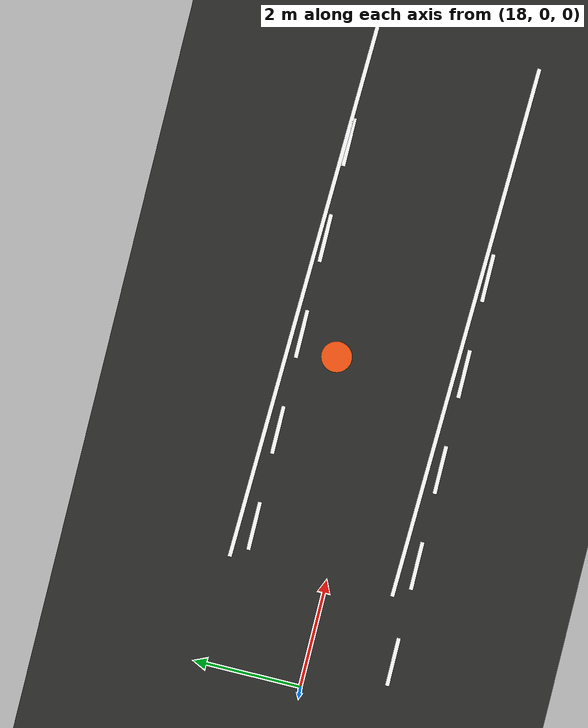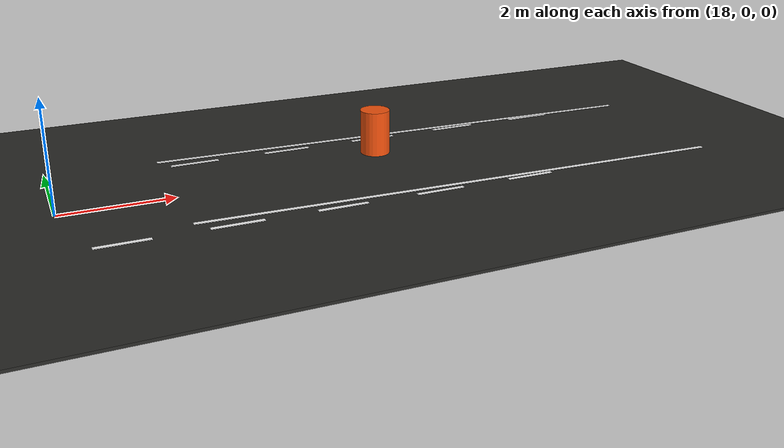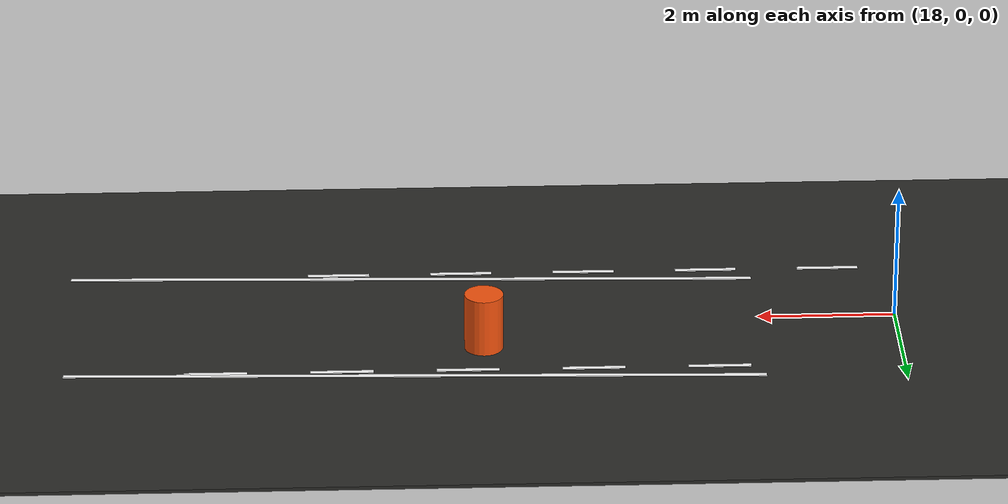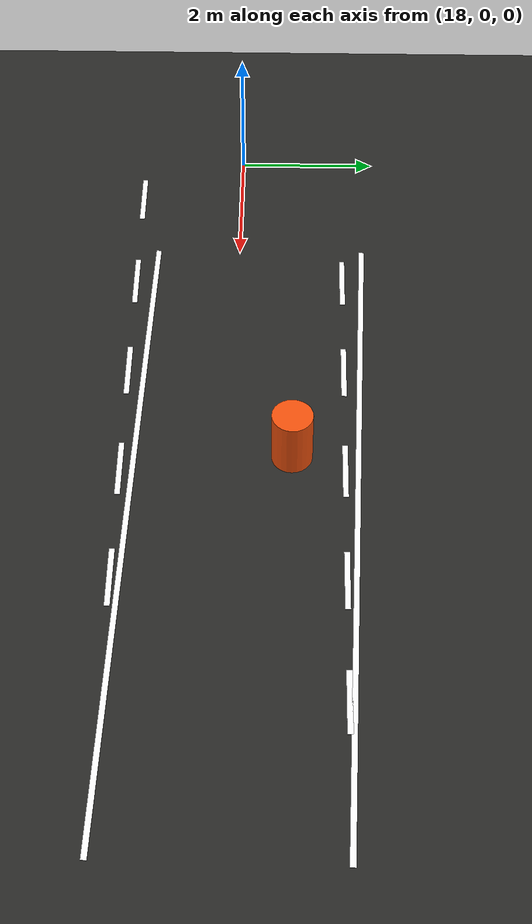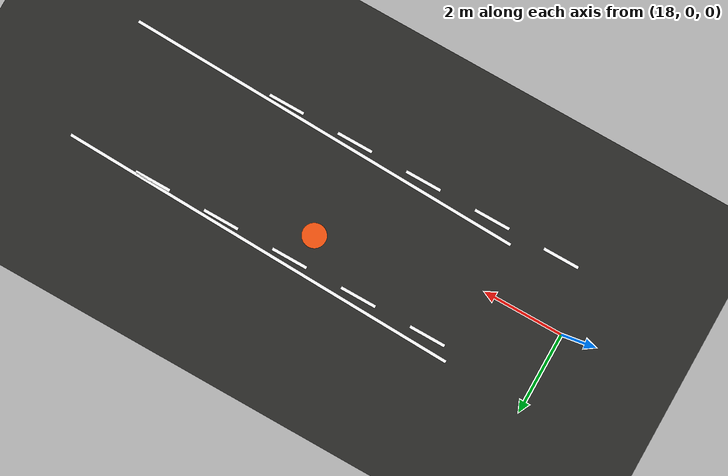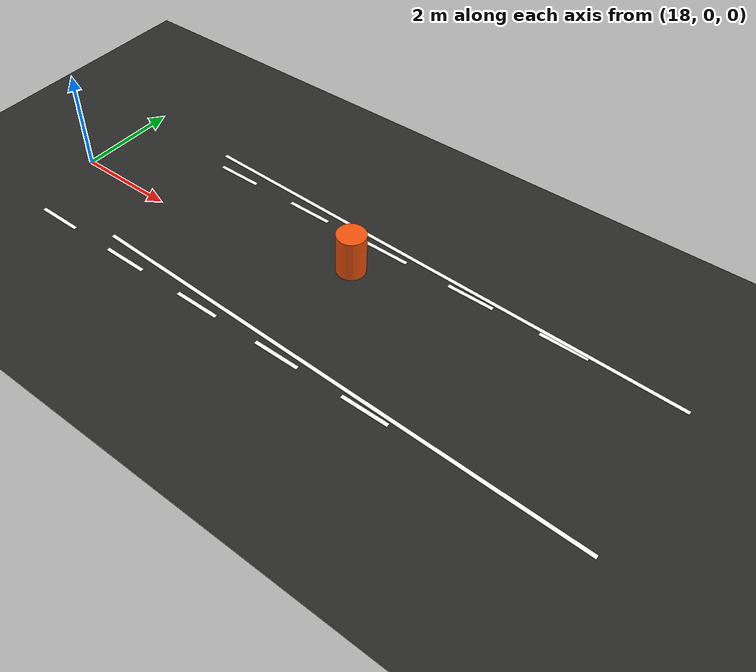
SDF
<sdf version="1.9">
 <world name="igvc_competition">
  <model name="asphalt_ground">
   <static>1</static>
   <pose>21.0000 0.0000 -0.0250 0.000000 0.000000 0.000000</pose>
   <link name="link">
    <collision name="collision"><geometry><box><size>60.0000 30.0000 0.0500</size></box></geometry></collision>
    <visual name="visual">
     <geometry><box><size>60.0000 30.0000 0.0500</size></box></geometry>
     <material>
      <ambient>0.16 0.16 0.15 1.0</ambient>
      <diffuse>0.16 0.16 0.15 1.0</diffuse>
      <specular>0.05 0.05 0.05 1</specular>
     </material>
    </visual>
   </link>
  </model>
  <model name="left_boundary_2">
   <static>1</static>
   <pose>25.0104 1.6739 0.011 0 0 -0.029943</pose>
   <link name="link">
    <visual name="visual">
     <geometry><box><size>10.0253 0.0762 0.012</size></box></geometry>
     <material>
      <ambient>0.98 0.98 0.98 1</ambient>
      <diffuse>0.98 0.98 0.98 1</diffuse>
      <specular>0.05 0.05 0.05 1</specular>
      <emissive>0.9 0.9 0.9 1</emissive>
     </material>
    </visual>
   </link>
  </model>
  <model name="right_boundary_2">
   <static>1</static>
   <pose>24.9896 -1.3739 0.011 0 0 -0.030039</pose>
   <link name="link">
    <visual name="visual">
     <geometry><box><size>9.9837 0.0762 0.012</size></box></geometry>
     <material>
      <ambient>0.98 0.98 0.98 1</ambient>
      <diffuse>0.98 0.98 0.98 1</diffuse>
      <specular>0.05 0.05 0.05 1</specular>
      <emissive>0.9 0.9 0.9 1</emissive>
     </material>
    </visual>
   </link>
  </model>
  <model name="dashed_left_long_9">
   <static>1</static>
   <pose>20.6500 1.5240 0.011 0 0 0.000000</pose>
   <link name="link">
    <visual name="visual">
     <geometry><box><size>0.9000 0.0762 0.012</size></box></geometry>
     <material>
      <ambient>0.98 0.98 0.98 1</ambient>
      <diffuse>0.98 0.98 0.98 1</diffuse>
      <specular>0.05 0.05 0.05 1</specular>
      <emissive>0.9 0.9 0.9 1</emissive>
     </material>
    </visual>
   </link>
  </model>
  <model name="dashed_left_long_10">
   <static>1</static>
   <pose>22.4500 1.5240 0.011 0 0 0.000000</pose>
   <link name="link">
    <visual name="visual">
     <geometry><box><size>0.9000 0.0762 0.012</size></box></geometry>
     <material>
      <ambient>0.98 0.98 0.98 1</ambient>
      <diffuse>0.98 0.98 0.98 1</diffuse>
      <specular>0.05 0.05 0.05 1</specular>
      <emissive>0.9 0.9 0.9 1</emissive>
     </material>
    </visual>
   </link>
  </model>
  <model name="dashed_left_long_11">
   <static>1</static>
   <pose>24.2500 1.5240 0.011 0 0 0.000000</pose>
   <link name="link">
    <visual name="visual">
     <geometry><box><size>0.9000 0.0762 0.012</size></box></geometry>
     <material>
      <ambient>0.98 0.98 0.98 1</ambient>
      <diffuse>0.98 0.98 0.98 1</diffuse>
      <specular>0.05 0.05 0.05 1</specular>
      <emissive>0.9 0.9 0.9 1</emissive>
     </material>
    </visual>
   </link>
  </model>
  <model name="dashed_left_long_12">
   <static>1</static>
   <pose>26.0500 1.5240 0.011 0 0 0.000000</pose>
   <link name="link">
    <visual name="visual">
     <geometry><box><size>0.9000 0.0762 0.012</size></box></geometry>
     <material>
      <ambient>0.98 0.98 0.98 1</ambient>
      <diffuse>0.98 0.98 0.98 1</diffuse>
      <specular>0.05 0.05 0.05 1</specular>
      <emissive>0.9 0.9 0.9 1</emissive>
     </material>
    </visual>
   </link>
  </model>
  <model name="dashed_left_long_13">
   <static>1</static>
   <pose>27.8500 1.5240 0.011 0 0 0.000000</pose>
   <link name="link">
    <visual name="visual">
     <geometry><box><size>0.9000 0.0762 0.012</size></box></geometry>
     <material>
      <ambient>0.98 0.98 0.98 1</ambient>
      <diffuse>0.98 0.98 0.98 1</diffuse>
      <specular>0.05 0.05 0.05 1</specular>
      <emissive>0.9 0.9 0.9 1</emissive>
     </material>
    </visual>
   </link>
  </model>
  <model name="dashed_right_long_8">
   <static>1</static>
   <pose>18.8500 -1.5240 0.011 0 0 0.000000</pose>
   <link name="link">
    <visual name="visual">
     <geometry><box><size>0.9000 0.0762 0.012</size></box></geometry>
     <material>
      <ambient>0.98 0.98 0.98 1</ambient>
      <diffuse>0.98 0.98 0.98 1</diffuse>
      <specular>0.05 0.05 0.05 1</specular>
      <emissive>0.9 0.9 0.9 1</emissive>
     </material>
    </visual>
   </link>
  </model>
  <model name="dashed_right_long_9">
   <static>1</static>
   <pose>20.6500 -1.5240 0.011 0 0 0.000000</pose>
   <link name="link">
    <visual name="visual">
     <geometry><box><size>0.9000 0.0762 0.012</size></box></geometry>
     <material>
      <ambient>0.98 0.98 0.98 1</ambient>
      <diffuse>0.98 0.98 0.98 1</diffuse>
      <specular>0.05 0.05 0.05 1</specular>
      <emissive>0.9 0.9 0.9 1</emissive>
     </material>
    </visual>
   </link>
  </model>
  <model name="dashed_right_long_10">
   <static>1</static>
   <pose>22.4500 -1.5240 0.011 0 0 0.000000</pose>
   <link name="link">
    <visual name="visual">
     <geometry><box><size>0.9000 0.0762 0.012</size></box></geometry>
     <material>
      <ambient>0.98 0.98 0.98 1</ambient>
      <diffuse>0.98 0.98 0.98 1</diffuse>
      <specular>0.05 0.05 0.05 1</specular>
      <emissive>0.9 0.9 0.9 1</emissive>
     </material>
    </visual>
   </link>
  </model>
  <model name="dashed_right_long_11">
   <static>1</static>
   <pose>24.2500 -1.5240 0.011 0 0 0.000000</pose>
   <link name="link">
    <visual name="visual">
     <geometry><box><size>0.9000 0.0762 0.012</size></box></geometry>
     <material>
      <ambient>0.98 0.98 0.98 1</ambient>
      <diffuse>0.98 0.98 0.98 1</diffuse>
      <specular>0.05 0.05 0.05 1</specular>
      <emissive>0.9 0.9 0.9 1</emissive>
     </material>
    </visual>
   </link>
  </model>
  <model name="dashed_right_long_12">
   <static>1</static>
   <pose>26.0500 -1.5240 0.011 0 0 0.000000</pose>
   <link name="link">
    <visual name="visual">
     <geometry><box><size>0.9000 0.0762 0.012</size></box></geometry>
     <material>
      <ambient>0.98 0.98 0.98 1</ambient>
      <diffuse>0.98 0.98 0.98 1</diffuse>
      <specular>0.05 0.05 0.05 1</specular>
      <emissive>0.9 0.9 0.9 1</emissive>
     </material>
    </visual>
   </link>
  </model>
  <model name="lone_barrel">
   <static>1</static>
   <pose>24.0000 0.8000 0 0 0 0</pose>
   <link name="link">
    <collision name="collision">
     <pose>0 0 0.4250 0 0 0</pose>
     <geometry><cylinder><radius>0.2800</radius><length>0.8500</length></cylinder></geometry>
    </collision>
    <visual name="visual">
     <pose>0 0 0.4250 0 0 0</pose>
     <geometry><cylinder><radius>0.2800</radius><length>0.8500</length></cylinder></geometry>
     <material>
      <ambient>0.95 0.32 0.05 1.0</ambient>
      <diffuse>0.95 0.32 0.05 1.0</diffuse>
      <specular>0.05 0.05 0.05 1</specular>
     </material>
    </visual>
   </link>
  </model>
 </world>
</sdf>
